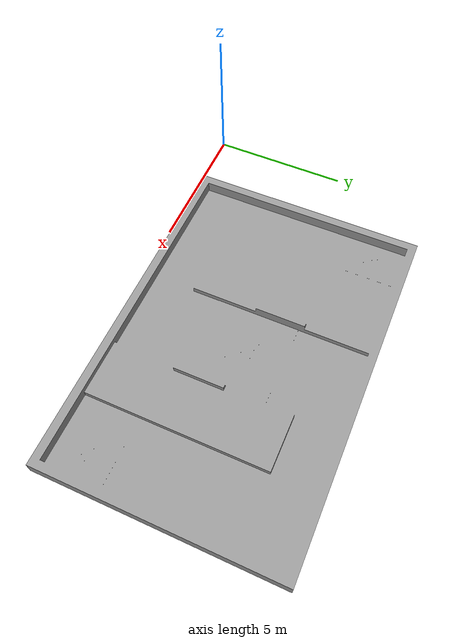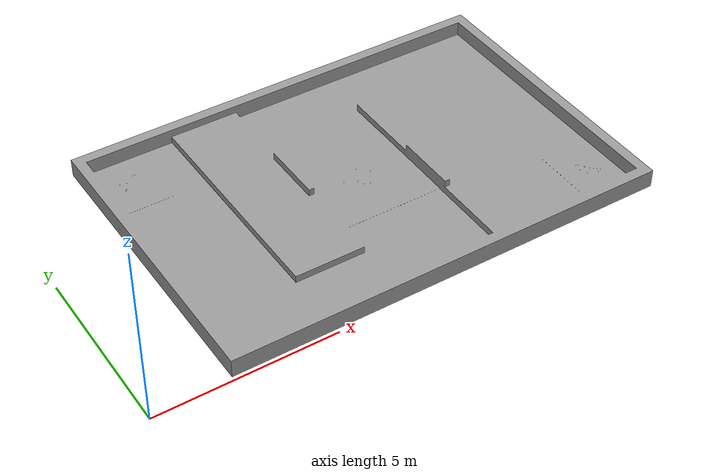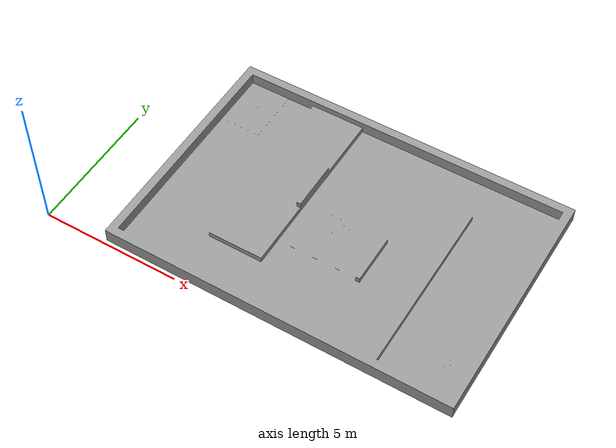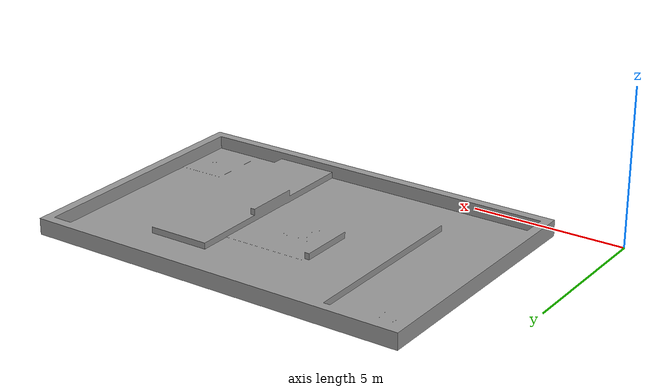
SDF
<sdf version="1.7">
 <world name="default">
  <gravity>0 0 -9.8</gravity>
  <magnetic_field>6e-06 2.3e-05 -4.2e-05</magnetic_field>
  <atmosphere type="adiabatic"/>
  <physics type="ode">
   <max_step_size>0.001</max_step_size>
   <real_time_factor>1</real_time_factor>
   <real_time_update_rate>1000</real_time_update_rate>
  </physics>
  <scene><ambient>0.4 0.4 0.4 1</ambient><background>0.7 0.7 0.7 1</background><shadows>1</shadows></scene>
  <audio><device>default</device></audio>
  <spherical_coordinates>
   <surface_model>EARTH_WGS84</surface_model>
   <latitude_deg>0</latitude_deg>
   <longitude_deg>0</longitude_deg>
   <elevation>0</elevation>
   <heading_deg>0</heading_deg>
  </spherical_coordinates>
  <model name="RMUL_2026">
   <link name="link_3">
    <inertial>
     <mass>1</mass>
     <inertia>
      <ixx>0.166667</ixx>
      <ixy>0</ixy>
      <ixz>0</ixz>
      <iyy>0.166667</iyy>
      <iyz>0</iyz>
      <izz>0.166667</izz>
     </inertia>
    </inertial>
    <pose>0 0 -3e-06 0 -0 0</pose>
    <visual name="visual">
     <pose>0 0 -2.649662 -1.5705 0 0</pose>
     <geometry>
      <mesh><uri>model://RMUL2026_world/meshes/RMUL2026.stl</uri><scale>0.001 0.001 0.001</scale></mesh>
     </geometry>
     <material>
      <lighting>1</lighting>
      <script><uri>file://media/materials/scripts/gazebo.material</uri><name>Gazebo/Grey</name></script>
      <shader type="pixel"><normal_map>__default__</normal_map></shader>
      <ambient>0.3 0.3 0.3 1</ambient>
      <diffuse>0.7 0.7 0.7 1</diffuse>
      <specular>0.01 0.01 0.01 1</specular>
      <emissive>0 0 0 1</emissive>
     </material>
    </visual>
    <collision name="collision">
     <pose>0 0 -2.649662 -1.5705 0 0</pose>
     <geometry>
      <mesh><uri>model://RMUL2026_world/meshes/RMUL2026.stl</uri><scale>0.001 0.001 0.001</scale></mesh>
     </geometry>
     <surface>
      <friction>
       <ode><mu>1</mu><mu2>1</mu2><fdir1>0 0 0</fdir1><slip1>0</slip1><slip2>0</slip2></ode>
       <torsional>
        <coefficient>1</coefficient>
        <patch_radius>0</patch_radius>
        <surface_radius>0</surface_radius>
        <use_patch_radius>1</use_patch_radius>
        <ode><slip>0</slip></ode>
       </torsional>
      </friction>
      <bounce><restitution_coefficient>0</restitution_coefficient><threshold>1e+06</threshold></bounce>
      <contact>
       <collide_without_contact>0</collide_without_contact>
       <collide_without_contact_bitmask>1</collide_without_contact_bitmask>
       <collide_bitmask>1</collide_bitmask>
       <ode>
        <soft_cfm>0</soft_cfm>
        <soft_erp>0.2</soft_erp>
        <kp>1e+13</kp>
        <kd>1</kd>
        <max_vel>0.01</max_vel>
        <min_depth>0</min_depth>
       </ode>
       <bullet>
        <split_impulse>1</split_impulse>
        <split_impulse_penetration_threshold>-0.01</split_impulse_penetration_threshold>
        <soft_cfm>0</soft_cfm>
        <soft_erp>0.2</soft_erp>
        <kp>1e+13</kp>
        <kd>1</kd>
       </bullet>
      </contact>
     </surface>
    </collision>
   </link>
   <static>1</static>
   <pose>8.5 4.5 2.65 0 0 0</pose>
  </model>
  <light name="user_directional_light_0" type="directional">
   <pose>5.92611 3.87759 1 0 -0 0</pose>
   <diffuse>0.5 0.5 0.5 1</diffuse>
   <specular>0.1 0.1 0.1 1</specular>
   <direction>0.1 0.1 -0.9</direction>
   <attenuation>
    <range>20</range>
    <constant>0.5</constant>
    <linear>0.01</linear>
    <quadratic>0.001</quadratic>
   </attenuation>
  </light>
  <light name="user_point_light_0" type="point">
   <pose>7.74204 2.38082 1 0 -0 0</pose>
   <diffuse>0.5 0.5 0.5 1</diffuse>
   <specular>0.1 0.1 0.1 1</specular>
   <attenuation>
    <range>20</range>
    <constant>0.5</constant>
    <linear>0.01</linear>
    <quadratic>0.001</quadratic>
   </attenuation>
   <cast_shadows>0</cast_shadows>
   <direction>0 0 -1</direction>
  </light>
  <light name="user_spot_light_0" type="spot">
   <pose>2.4624 1.17686 1 0 -0 0</pose>
   <diffuse>0.5 0.5 0.5 1</diffuse>
   <specular>0.1 0.1 0.1 1</specular>
   <direction>0 0 -1</direction>
   <attenuation>
    <range>20</range>
    <constant>0.5</constant>
    <linear>0.01</linear>
    <quadratic>0.001</quadratic>
   </attenuation>
   <cast_shadows>0</cast_shadows>
   <spot><inner_angle>0.6</inner_angle><outer_angle>1</outer_angle><falloff>1</falloff></spot>
  </light>
  <light name="user_spot_light_1" type="spot">
   <pose>12.1106 6.3566 1 0 -0 0</pose>
   <diffuse>0.5 0.5 0.5 1</diffuse>
   <specular>0.1 0.1 0.1 1</specular>
   <direction>0 0 -1</direction>
   <attenuation>
    <range>20</range>
    <constant>0.5</constant>
    <linear>0.01</linear>
    <quadratic>0.001</quadratic>
   </attenuation>
   <cast_shadows>0</cast_shadows>
   <spot><inner_angle>0.6</inner_angle><outer_angle>1</outer_angle><falloff>1</falloff></spot>
  </light>
  <light name="user_spot_light_2" type="spot">
   <pose>7.29605 3.79652 1 0 -0 0</pose>
   <diffuse>0.5 0.5 0.5 1</diffuse>
   <specular>0.1 0.1 0.1 1</specular>
   <direction>0 0 -1</direction>
   <attenuation>
    <range>20</range>
    <constant>0.5</constant>
    <linear>0.01</linear>
    <quadratic>0.001</quadratic>
   </attenuation>
   <cast_shadows>0</cast_shadows>
   <spot><inner_angle>0.6</inner_angle><outer_angle>1</outer_angle><falloff>1</falloff></spot>
  </light>
 </world>
</sdf>
